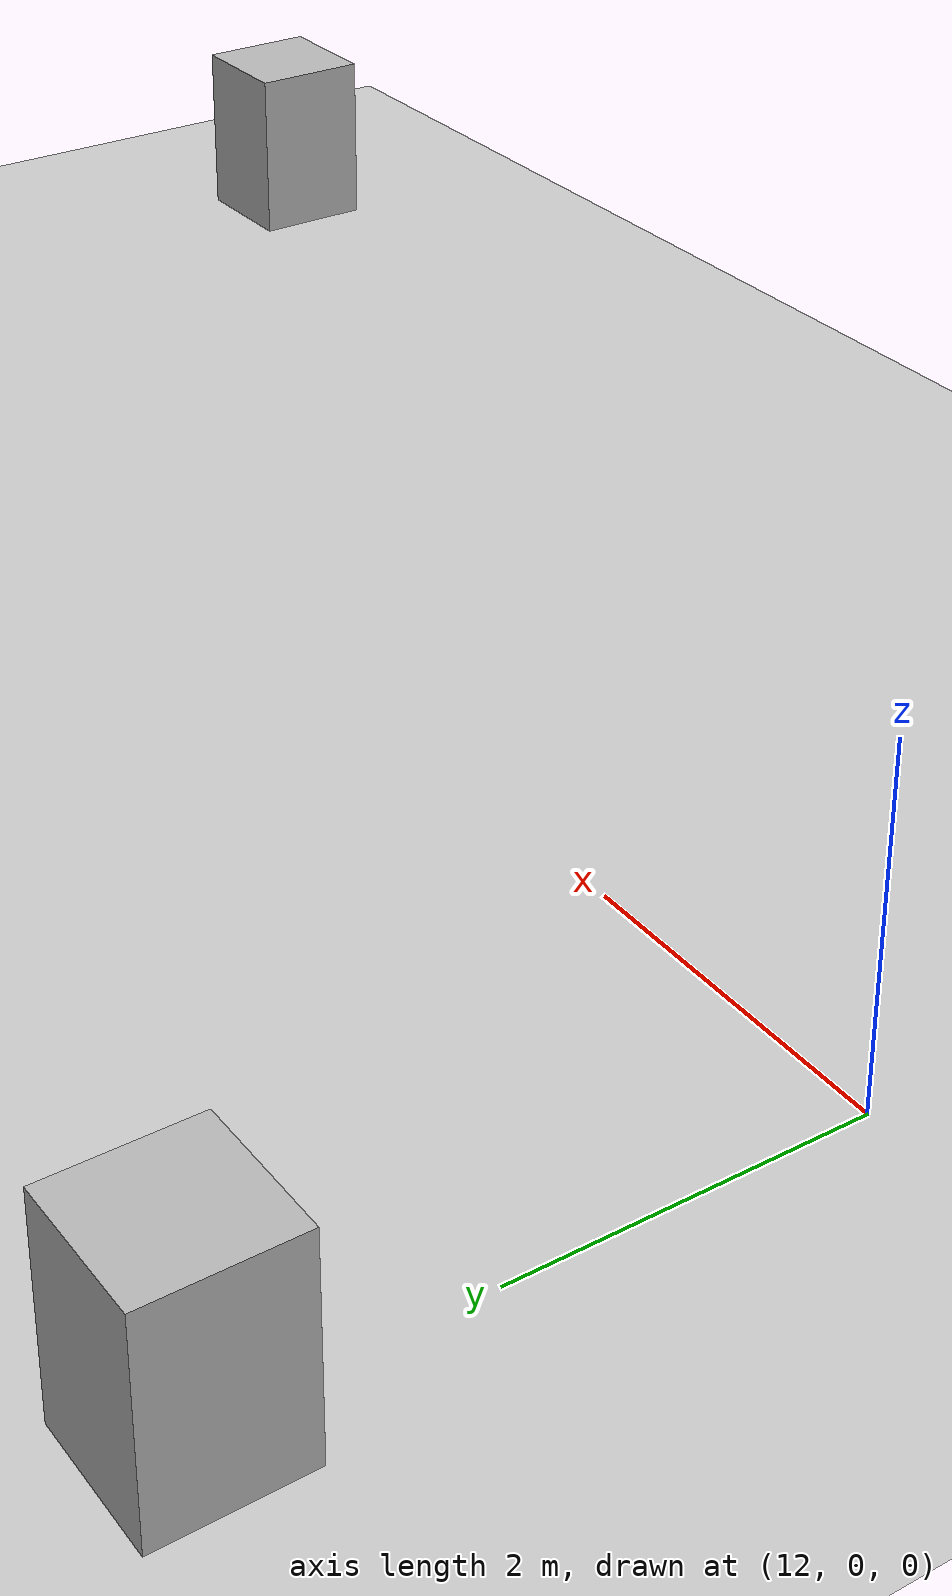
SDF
<?xml version="1.0"?>
<sdf version="1.6">
  <world name="v2-04g-r4-cruise-s5062">
    <gravity>0 0 -9.81</gravity>
    <physics name="v2_deterministic" type="ode">
      <max_step_size>0.002</max_step_size>
      <real_time_update_rate>500</real_time_update_rate>
    </physics>
    <include>
      <uri>model://sun</uri>
    </include>
    <include>
      <uri>model://ground_plane</uri>
    </include>
    <model name="cruise-left">
      <static>true</static>
      <pose>11.970779623 3.511179550 0.600000000 0 0 0.006165461</pose>
      <link name="link">
        <collision name="collision">
          <geometry>
            <box>
              <size>0.800000 0.800000 1.200000</size>
            </box>
          </geometry>
        </collision>
        <visual name="visual">
          <geometry>
            <box>
              <size>0.800000 0.800000 1.200000</size>
            </box>
          </geometry>
        </visual>
      </link>
    </model>
    <model name="cruise-right">
      <static>true</static>
      <pose>22.950995017 -3.446175587 0.600000000 0 0 0.009232916</pose>
      <link name="link">
        <collision name="collision">
          <geometry>
            <box>
              <size>0.800000 0.800000 1.200000</size>
            </box>
          </geometry>
        </collision>
        <visual name="visual">
          <geometry>
            <box>
              <size>0.800000 0.800000 1.200000</size>
            </box>
          </geometry>
        </visual>
      </link>
    </model>
  </world>
</sdf>
